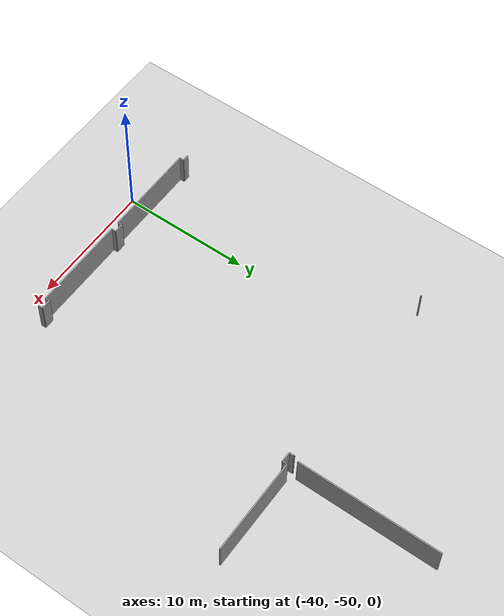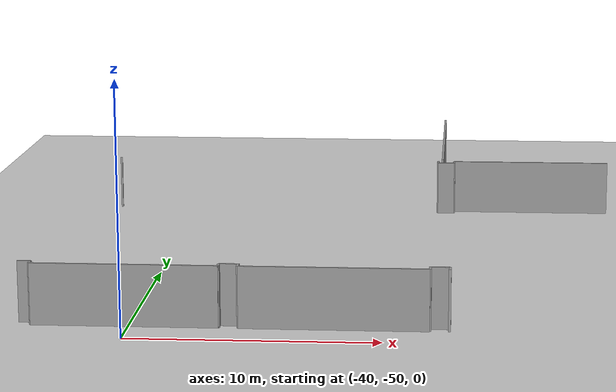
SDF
<sdf version="1.6">
 <world name="default">
  <model name="ground_plane">
   <static>1</static>
   <link name="link">
    <collision name="collision">
     <geometry><plane><normal>0 0 1</normal><size>100 100</size></plane></geometry>
     <surface><friction><ode><mu>100</mu><mu2>50</mu2></ode></friction></surface>
    </collision>
    <visual name="visual">
     <cast_shadows>0</cast_shadows>
     <geometry><plane><normal>0 0 1</normal><size>100 100</size></plane></geometry>
     <material>
      <script><uri>file://media/materials/scripts/gazebo.material</uri><name>Gazebo/Grey</name></script>
     </material>
    </visual>
   </link>
  </model>
  <model name="50025631">
   <static>1</static>
   <link name="Wall_417">
    <collision name="Wall_417_Collision">
     <geometry><box><size>0.357013583281 0.1 2.5</size></box></geometry>
     <pose>0.17850679164 0 1.25 0 0 0</pose>
    </collision>
    <visual name="Wall_417_Visual">
     <pose>0.17850679164 0 1.25 0 0 0</pose>
     <geometry><box><size>0.357013583281 0.1 2.5</size></box></geometry>
     <material>
      <script><uri>file://media/materials/scripts/gazebo.material</uri><name>Gazebo/Grey</name></script>
      <ambient>1 1 1 1</ambient>
     </material>
    </visual>
    <pose>28.4297625625 -96.9364017959 0 0 0 1.57079632679</pose>
   </link>
   <link name="Wall_418">
    <collision name="Wall_418_Collision">
     <geometry><box><size>0.763940485036 0.1 2.5</size></box></geometry>
     <pose>0.381970242518 0 1.25 0 0 0</pose>
    </collision>
    <visual name="Wall_418_Visual">
     <pose>0.381970242518 0 1.25 0 0 0</pose>
     <geometry><box><size>0.763940485036 0.1 2.5</size></box></geometry>
     <material>
      <script><uri>file://media/materials/scripts/gazebo.material</uri><name>Gazebo/Grey</name></script>
      <ambient>1 1 1 1</ambient>
     </material>
    </visual>
    <pose>28.4297625625 -96.5793882126 0 0 0 3.14159265359</pose>
   </link>
   <link name="Wall_419">
    <collision name="Wall_419_Collision">
     <geometry><box><size>0.338978745563 0.1 2.5</size></box></geometry>
     <pose>0.169489372781 0 1.25 0 0 0</pose>
    </collision>
    <visual name="Wall_419_Visual">
     <pose>0.169489372781 0 1.25 0 0 0</pose>
     <geometry><box><size>0.338978745563 0.1 2.5</size></box></geometry>
     <material>
      <script><uri>file://media/materials/scripts/gazebo.material</uri><name>Gazebo/Grey</name></script>
      <ambient>1 1 1 1</ambient>
     </material>
    </visual>
    <pose>27.6658220774 -96.5793882126 0 0 0 -1.57079632679</pose>
   </link>
   <link name="Wall_420">
    <collision name="Wall_420_Collision">
     <geometry><box><size>7.45892946727 0.1 2.5</size></box></geometry>
     <pose>3.72946473364 0 1.25 0 0 0</pose>
    </collision>
    <visual name="Wall_420_Visual">
     <pose>3.72946473364 0 1.25 0 0 0</pose>
     <geometry><box><size>7.45892946727 0.1 2.5</size></box></geometry>
     <material>
      <script><uri>file://media/materials/scripts/gazebo.material</uri><name>Gazebo/Grey</name></script>
      <ambient>1 1 1 1</ambient>
     </material>
    </visual>
    <pose>27.6658220774 -96.9183669581 0 0 0 3.14159265359</pose>
   </link>
   <link name="Wall_421">
    <collision name="Wall_421_Collision">
     <geometry><box><size>0.343169940244 0.1 2.5</size></box></geometry>
     <pose>0.171584970122 0 1.25 0 0 0</pose>
    </collision>
    <visual name="Wall_421_Visual">
     <pose>0.171584970122 0 1.25 0 0 0</pose>
     <geometry><box><size>0.343169940244 0.1 2.5</size></box></geometry>
     <material>
      <script><uri>file://media/materials/scripts/gazebo.material</uri><name>Gazebo/Grey</name></script>
      <ambient>1 1 1 1</ambient>
     </material>
    </visual>
    <pose>20.2068926102 -96.9183669581 0 0 0 1.57079632679</pose>
   </link>
   <link name="Wall_422">
    <collision name="Wall_422_Collision">
     <geometry><box><size>0.759876296254 0.1 2.5</size></box></geometry>
     <pose>0.379938148127 0 1.25 0 0 0</pose>
    </collision>
    <visual name="Wall_422_Visual">
     <pose>0.379938148127 0 1.25 0 0 0</pose>
     <geometry><box><size>0.759876296254 0.1 2.5</size></box></geometry>
     <material>
      <script><uri>file://media/materials/scripts/gazebo.material</uri><name>Gazebo/Grey</name></script>
      <ambient>1 1 1 1</ambient>
     </material>
    </visual>
    <pose>20.2068926102 -96.5751970179 0 0 0 3.14159265359</pose>
   </link>
   <link name="Wall_423">
    <collision name="Wall_423_Collision">
     <geometry><box><size>0.340502816356 0.1 2.5</size></box></geometry>
     <pose>0.170251408178 0 1.25 0 0 0</pose>
    </collision>
    <visual name="Wall_423_Visual">
     <pose>0.170251408178 0 1.25 0 0 0</pose>
     <geometry><box><size>0.340502816356 0.1 2.5</size></box></geometry>
     <material>
      <script><uri>file://media/materials/scripts/gazebo.material</uri><name>Gazebo/Grey</name></script>
      <ambient>1 1 1 1</ambient>
     </material>
    </visual>
    <pose>19.4470163139 -96.5751970179 0 0 0 -1.57079632679</pose>
   </link>
   <link name="Wall_424">
    <collision name="Wall_424_Collision">
     <geometry><box><size>7.41104824319 0.1 2.5</size></box></geometry>
     <pose>3.7055241216 0 1.25 0 0 0</pose>
    </collision>
    <visual name="Wall_424_Visual">
     <pose>3.7055241216 0 1.25 0 0 0</pose>
     <geometry><box><size>7.41104824319 0.1 2.5</size></box></geometry>
     <material>
      <script><uri>file://media/materials/scripts/gazebo.material</uri><name>Gazebo/Grey</name></script>
      <ambient>1 1 1 1</ambient>
     </material>
    </visual>
    <pose>19.4470163139 -96.9156998343 0 0 0 3.14159265359</pose>
   </link>
   <link name="Wall_425">
    <collision name="Wall_425_Collision">
     <geometry><box><size>0.344567005137 0.1 2.5</size></box></geometry>
     <pose>0.172283502569 0 1.25 0 0 0</pose>
    </collision>
    <visual name="Wall_425_Visual">
     <pose>0.172283502569 0 1.25 0 0 0</pose>
     <geometry><box><size>0.344567005137 0.1 2.5</size></box></geometry>
     <material>
      <script><uri>file://media/materials/scripts/gazebo.material</uri><name>Gazebo/Grey</name></script>
      <ambient>1 1 1 1</ambient>
     </material>
    </visual>
    <pose>12.0359680707 -96.9156998343 0 0 0 1.57079632679</pose>
   </link>
   <link name="Wall_426">
    <collision name="Wall_426_Collision">
     <geometry><box><size>0.527201488509 0.1 2.5</size></box></geometry>
     <pose>0.263600744255 0 1.25 0 0 0</pose>
    </collision>
    <visual name="Wall_426_Visual">
     <pose>0.263600744255 0 1.25 0 0 0</pose>
     <geometry><box><size>0.527201488509 0.1 2.5</size></box></geometry>
     <material>
      <script><uri>file://media/materials/scripts/gazebo.material</uri><name>Gazebo/Grey</name></script>
      <ambient>1 1 1 1</ambient>
     </material>
    </visual>
    <pose>12.0359680707 -96.5711328291 0 0 0 3.14159265359</pose>
   </link>
   <link name="Wall_435">
    <collision name="Wall_435_Collision">
     <geometry><box><size>0.0830618582233 0.1 2.5</size></box></geometry>
     <pose>0.0415309291117 0 1.25 0 0 0</pose>
    </collision>
    <visual name="Wall_435_Visual">
     <pose>0.0415309291117 0 1.25 0 0 0</pose>
     <geometry><box><size>0.0830618582233 0.1 2.5</size></box></geometry>
     <material>
      <script><uri>file://media/materials/scripts/gazebo.material</uri><name>Gazebo/Grey</name></script>
      <ambient>1 1 1 1</ambient>
     </material>
    </visual>
    <pose>12.0110749144 -75.7330208988 0 0 0 3.14159265359</pose>
   </link>
   <link name="Wall_442">
    <collision name="Wall_442_Collision">
     <geometry><box><size>0.0457221237927 0.1 2.5</size></box></geometry>
     <pose>0.0228610618963 0 1.25 0 0 0</pose>
    </collision>
    <visual name="Wall_442_Visual">
     <pose>0.0228610618963 0 1.25 0 0 0</pose>
     <geometry><box><size>0.0457221237927 0.1 2.5</size></box></geometry>
     <material>
      <script><uri>file://media/materials/scripts/gazebo.material</uri><name>Gazebo/Grey</name></script>
      <ambient>1 1 1 1</ambient>
     </material>
    </visual>
    <pose>27.5887294965 -75.7661694386 0 0 0 0.0</pose>
   </link>
   <link name="Wall_443">
    <collision name="Wall_443_Collision">
     <geometry><box><size>0.382033745467 0.1 2.5</size></box></geometry>
     <pose>0.191016872734 0 1.25 0 0 0</pose>
    </collision>
    <visual name="Wall_443_Visual">
     <pose>0.191016872734 0 1.25 0 0 0</pose>
     <geometry><box><size>0.382033745467 0.1 2.5</size></box></geometry>
     <material>
      <script><uri>file://media/materials/scripts/gazebo.material</uri><name>Gazebo/Grey</name></script>
      <ambient>1 1 1 1</ambient>
     </material>
    </visual>
    <pose>27.6344516203 -75.7661694386 0 0 0 -1.57079632679</pose>
   </link>
   <link name="Wall_444">
    <collision name="Wall_444_Collision">
     <geometry><box><size>0.768131679717 0.1 2.5</size></box></geometry>
     <pose>0.384065839858 0 1.25 0 0 0</pose>
    </collision>
    <visual name="Wall_444_Visual">
     <pose>0.384065839858 0 1.25 0 0 0</pose>
     <geometry><box><size>0.768131679717 0.1 2.5</size></box></geometry>
     <material>
      <script><uri>file://media/materials/scripts/gazebo.material</uri><name>Gazebo/Grey</name></script>
      <ambient>1 1 1 1</ambient>
     </material>
    </visual>
    <pose>27.6344516203 -76.148203184 0 0 0 0.0</pose>
   </link>
   <link name="Wall_445">
    <collision name="Wall_445_Collision">
     <geometry><box><size>0.365395972643 0.1 2.5</size></box></geometry>
     <pose>0.182697986321 0 1.25 0 0 0</pose>
    </collision>
    <visual name="Wall_445_Visual">
     <pose>0.182697986321 0 1.25 0 0 0</pose>
     <geometry><box><size>0.365395972643 0.1 2.5</size></box></geometry>
     <material>
      <script><uri>file://media/materials/scripts/gazebo.material</uri><name>Gazebo/Grey</name></script>
      <ambient>1 1 1 1</ambient>
     </material>
    </visual>
    <pose>28.4025833 -76.148203184 0 0 0 1.57079632679</pose>
   </link>
   <link name="Wall_446">
    <collision name="Wall_446_Collision">
     <geometry><box><size>7.44432378884 0.1 2.5</size></box></geometry>
     <pose>3.72216189442 0 1.25 0 0 0</pose>
    </collision>
    <visual name="Wall_446_Visual">
     <pose>3.72216189442 0 1.25 0 0 0</pose>
     <geometry><box><size>7.44432378884 0.1 2.5</size></box></geometry>
     <material>
      <script><uri>file://media/materials/scripts/gazebo.material</uri><name>Gazebo/Grey</name></script>
      <ambient>1 1 1 1</ambient>
     </material>
    </visual>
    <pose>28.4025833 -75.7828072114 0 0 0 0.0</pose>
   </link>
   <link name="Wall_543">
    <collision name="Wall_543_Collision">
     <geometry><box><size>11.0615788103 0.1 2.5</size></box></geometry>
     <pose>5.53078940517 0 1.25 0 0 0</pose>
    </collision>
    <visual name="Wall_543_Visual">
     <pose>5.53078940517 0 1.25 0 0 0</pose>
     <geometry><box><size>11.0615788103 0.1 2.5</size></box></geometry>
     <material>
      <script><uri>file://media/materials/scripts/gazebo.material</uri><name>Gazebo/Grey</name></script>
      <ambient>1 1 1 1</ambient>
     </material>
    </visual>
    <pose>27.8427412953 -75.3292691446 0 0 0 1.57079632679</pose>
   </link>
   <pose>-55.9 48.5496043766 0 0 0 0</pose>
  </model>
 </world>
</sdf>
